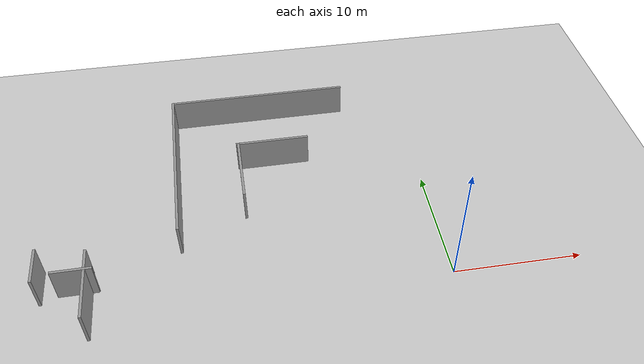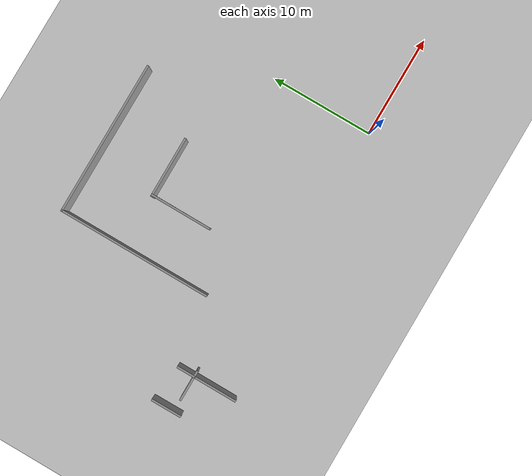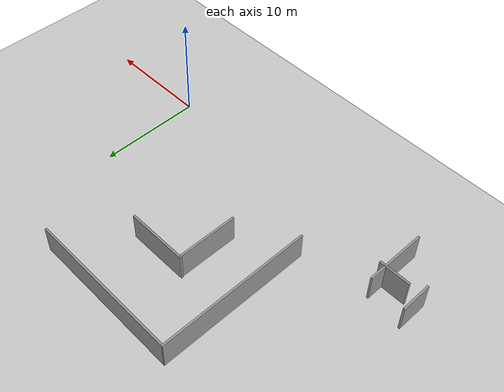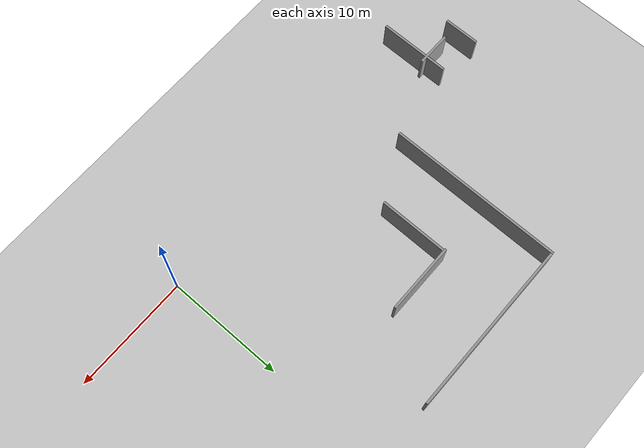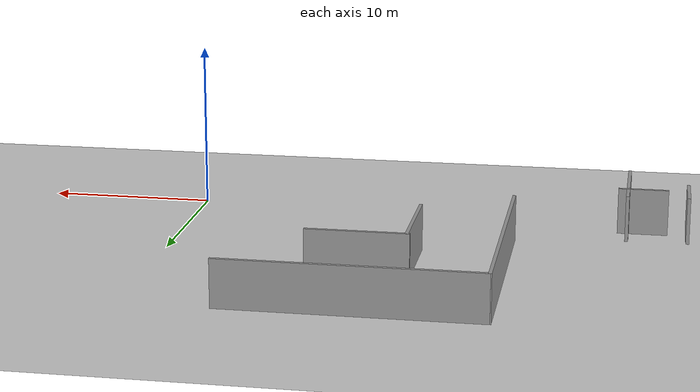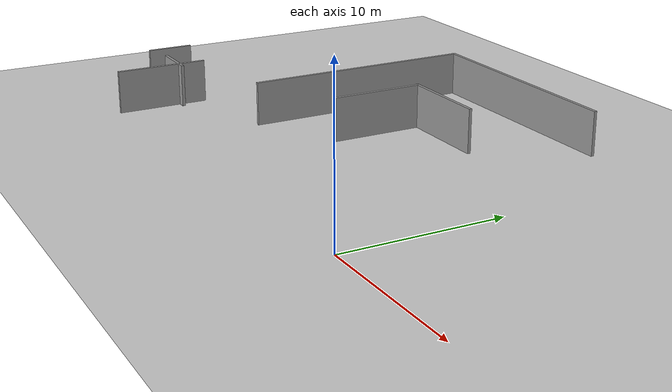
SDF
<sdf version="1.7">
 <world name="default">
  <model name="ground_plane">
   <static>1</static>
   <link name="link">
    <collision name="collision">
     <geometry><plane><normal>0 0 1</normal><size>100 100</size></plane></geometry>
     <surface>
      <contact><collide_bitmask>65535</collide_bitmask></contact>
      <friction><ode><mu>100</mu><mu2>50</mu2></ode></friction>
     </surface>
    </collision>
    <visual name="visual">
     <cast_shadows>0</cast_shadows>
     <geometry><plane><normal>0 0 1</normal><size>100 100</size></plane></geometry>
     <material>
      <script><uri>file://media/materials/scripts/gazebo.material</uri><name>Gazebo/Grey</name></script>
     </material>
    </visual>
   </link>
  </model>
  <model name="grey_wall_3_clone">
   <link name="link">
    <pose>0 0 1.4 0 -0 0</pose>
    <inertial>
     <mass>1</mass>
     <inertia><ixx>1</ixx><ixy>0</ixy><ixz>0</ixz><iyy>1</iyy><iyz>0</iyz><izz>1</izz></inertia>
    </inertial>
    <visual name="visual">
     <cast_shadows>0</cast_shadows>
     <geometry><box><size>3 0.2 2.8</size></box></geometry>
     <material>
      <script>
       <uri>model://grey_wall/materials/scripts</uri>
       <uri>model://grey_wall/materials/textures</uri>
       <name>vrc/grey_wall</name>
      </script>
      <shader type="pixel"><normal_map>__default__</normal_map></shader>
      <ambient>1 1 1 1</ambient>
      <diffuse>1 1 1 1</diffuse>
      <specular>0 0 0 1</specular>
      <emissive>0 0 0 1</emissive>
     </material>
    </visual>
    <collision name="collision">
     <geometry><box><size>2.96 0.2 2.8</size></box></geometry>
     <surface>
      <friction>
       <ode><mu>1</mu><mu2>1</mu2><fdir1>0 0 0</fdir1><slip1>0</slip1><slip2>0</slip2></ode>
       <torsional>
        <coefficient>1</coefficient>
        <patch_radius>0</patch_radius>
        <surface_radius>0</surface_radius>
        <use_patch_radius>1</use_patch_radius>
        <ode><slip>0</slip></ode>
       </torsional>
      </friction>
      <bounce><restitution_coefficient>0</restitution_coefficient><threshold>1e+06</threshold></bounce>
      <contact>
       <collide_without_contact>0</collide_without_contact>
       <collide_without_contact_bitmask>1</collide_without_contact_bitmask>
       <collide_bitmask>1</collide_bitmask>
       <ode>
        <soft_cfm>0</soft_cfm>
        <soft_erp>0.2</soft_erp>
        <kp>1e+13</kp>
        <kd>1</kd>
        <max_vel>0.01</max_vel>
        <min_depth>0</min_depth>
       </ode>
       <bullet>
        <split_impulse>1</split_impulse>
        <split_impulse_penetration_threshold>-0.01</split_impulse_penetration_threshold>
        <soft_cfm>0</soft_cfm>
        <soft_erp>0.2</soft_erp>
        <kp>1e+13</kp>
        <kd>1</kd>
       </bullet>
      </contact>
     </surface>
    </collision>
   </link>
   <static>1</static>
   <pose>-27.6676 2.53562 0 0 -0 0</pose>
  </model>
  <model name="grey_wall_6_clone">
   <link name="link">
    <pose>0 0 1.4 0 -0 0</pose>
    <inertial>
     <mass>1</mass>
     <inertia><ixx>1</ixx><ixy>0</ixy><ixz>0</ixz><iyy>1</iyy><iyz>0</iyz><izz>1</izz></inertia>
    </inertial>
    <visual name="visual">
     <cast_shadows>0</cast_shadows>
     <geometry><box><size>6 0.2 2.8</size></box></geometry>
     <material>
      <script>
       <uri>model://grey_wall/materials/scripts</uri>
       <uri>model://grey_wall/materials/textures</uri>
       <name>vrc/grey_wall</name>
      </script>
      <shader type="pixel"><normal_map>__default__</normal_map></shader>
      <ambient>1 1 1 1</ambient>
      <diffuse>1 1 1 1</diffuse>
      <specular>0 0 0 1</specular>
      <emissive>0 0 0 1</emissive>
     </material>
    </visual>
    <collision name="collision">
     <geometry><box><size>6 0.2 2.8</size></box></geometry>
     <surface>
      <friction>
       <ode><mu>1</mu><mu2>1</mu2><fdir1>0 0 0</fdir1><slip1>0</slip1><slip2>0</slip2></ode>
       <torsional>
        <coefficient>1</coefficient>
        <patch_radius>0</patch_radius>
        <surface_radius>0</surface_radius>
        <use_patch_radius>1</use_patch_radius>
        <ode><slip>0</slip></ode>
       </torsional>
      </friction>
      <bounce><restitution_coefficient>0</restitution_coefficient><threshold>1e+06</threshold></bounce>
      <contact>
       <collide_without_contact>0</collide_without_contact>
       <collide_without_contact_bitmask>1</collide_without_contact_bitmask>
       <collide_bitmask>1</collide_bitmask>
       <ode>
        <soft_cfm>0</soft_cfm>
        <soft_erp>0.2</soft_erp>
        <kp>1e+13</kp>
        <kd>1</kd>
        <max_vel>0.01</max_vel>
        <min_depth>0</min_depth>
       </ode>
       <bullet>
        <split_impulse>1</split_impulse>
        <split_impulse_penetration_threshold>-0.01</split_impulse_penetration_threshold>
        <soft_cfm>0</soft_cfm>
        <soft_erp>0.2</soft_erp>
        <kp>1e+13</kp>
        <kd>1</kd>
       </bullet>
      </contact>
     </surface>
    </collision>
   </link>
   <static>1</static>
   <pose>-26.7573 1.28858 0 0 -0 1.57141</pose>
  </model>
  <model name="grey_wall_2_clone">
   <link name="link">
    <pose>0 0 1.4 0 -0 0</pose>
    <inertial>
     <mass>1</mass>
     <inertia><ixx>1</ixx><ixy>0</ixy><ixz>0</ixz><iyy>1</iyy><iyz>0</iyz><izz>1</izz></inertia>
    </inertial>
    <visual name="visual">
     <cast_shadows>0</cast_shadows>
     <geometry><box><size>3 0.2 2.8</size></box></geometry>
     <material>
      <script>
       <uri>model://grey_wall/materials/scripts</uri>
       <uri>model://grey_wall/materials/textures</uri>
       <name>vrc/grey_wall</name>
      </script>
      <shader type="pixel"><normal_map>__default__</normal_map></shader>
      <ambient>1 1 1 1</ambient>
      <diffuse>1 1 1 1</diffuse>
      <specular>0 0 0 1</specular>
      <emissive>0 0 0 1</emissive>
     </material>
    </visual>
    <collision name="collision">
     <geometry><box><size>3 0.2 2.8</size></box></geometry>
     <surface>
      <friction>
       <ode><mu>1</mu><mu2>1</mu2><fdir1>0 0 0</fdir1><slip1>0</slip1><slip2>0</slip2></ode>
       <torsional>
        <coefficient>1</coefficient>
        <patch_radius>0</patch_radius>
        <surface_radius>0</surface_radius>
        <use_patch_radius>1</use_patch_radius>
        <ode><slip>0</slip></ode>
       </torsional>
      </friction>
      <bounce><restitution_coefficient>0</restitution_coefficient><threshold>1e+06</threshold></bounce>
      <contact>
       <collide_without_contact>0</collide_without_contact>
       <collide_without_contact_bitmask>1</collide_without_contact_bitmask>
       <collide_bitmask>1</collide_bitmask>
       <ode>
        <soft_cfm>0</soft_cfm>
        <soft_erp>0.2</soft_erp>
        <kp>1e+13</kp>
        <kd>1</kd>
        <max_vel>0.01</max_vel>
        <min_depth>0</min_depth>
       </ode>
       <bullet>
        <split_impulse>1</split_impulse>
        <split_impulse_penetration_threshold>-0.01</split_impulse_penetration_threshold>
        <soft_cfm>0</soft_cfm>
        <soft_erp>0.2</soft_erp>
        <kp>1e+13</kp>
        <kd>1</kd>
       </bullet>
      </contact>
     </surface>
    </collision>
   </link>
   <static>1</static>
   <pose>-30.3361 3.25719 0.16865 0 0 -1.56489</pose>
  </model>
  <model name="grey_wall_15_clone_0_clone_clone_0_clone_0">
   <link name="link">
    <pose>0 0 1.4 0 -0 0</pose>
    <inertial>
     <mass>1</mass>
     <inertia><ixx>1</ixx><ixy>0</ixy><ixz>0</ixz><iyy>1</iyy><iyz>0</iyz><izz>1</izz></inertia>
    </inertial>
    <visual name="visual">
     <cast_shadows>0</cast_shadows>
     <geometry><box><size>15 0.2 2.8</size></box></geometry>
     <material>
      <script>
       <uri>model://grey_wall/materials/scripts</uri>
       <uri>model://grey_wall/materials/textures</uri>
       <name>vrc/grey_wall</name>
      </script>
      <shader type="pixel"><normal_map>__default__</normal_map></shader>
      <ambient>1 1 1 1</ambient>
      <diffuse>1 1 1 1</diffuse>
      <specular>0 0 0 1</specular>
      <emissive>0 0 0 1</emissive>
     </material>
    </visual>
    <collision name="collision">
     <geometry><box><size>15 0.2 2.8</size></box></geometry>
     <surface>
      <friction>
       <ode><mu>1</mu><mu2>1</mu2><fdir1>0 0 0</fdir1><slip1>0</slip1><slip2>0</slip2></ode>
       <torsional>
        <coefficient>1</coefficient>
        <patch_radius>0</patch_radius>
        <surface_radius>0</surface_radius>
        <use_patch_radius>1</use_patch_radius>
        <ode><slip>0</slip></ode>
       </torsional>
      </friction>
      <bounce><restitution_coefficient>0</restitution_coefficient><threshold>1e+06</threshold></bounce>
      <contact>
       <collide_without_contact>0</collide_without_contact>
       <collide_without_contact_bitmask>1</collide_without_contact_bitmask>
       <collide_bitmask>1</collide_bitmask>
       <ode>
        <soft_cfm>0</soft_cfm>
        <soft_erp>0.2</soft_erp>
        <kp>1e+13</kp>
        <kd>1</kd>
        <max_vel>0.01</max_vel>
        <min_depth>0</min_depth>
       </ode>
       <bullet>
        <split_impulse>1</split_impulse>
        <split_impulse_penetration_threshold>-0.01</split_impulse_penetration_threshold>
        <soft_cfm>0</soft_cfm>
        <soft_erp>0.2</soft_erp>
        <kp>1e+13</kp>
        <kd>1</kd>
       </bullet>
      </contact>
     </surface>
    </collision>
   </link>
   <static>1</static>
   <pose>-20.1116 12.6835 0 0 -0 1.57141</pose>
  </model>
  <model name="grey_wall_15_clone_0_clone_clone_clone_1">
   <link name="link">
    <pose>0 0 1.4 0 -0 0</pose>
    <inertial>
     <mass>1</mass>
     <inertia><ixx>1</ixx><ixy>0</ixy><ixz>0</ixz><iyy>1</iyy><iyz>0</iyz><izz>1</izz></inertia>
    </inertial>
    <visual name="visual">
     <cast_shadows>0</cast_shadows>
     <geometry><box><size>15 0.2 2.8</size></box></geometry>
     <material>
      <script>
       <uri>model://grey_wall/materials/scripts</uri>
       <uri>model://grey_wall/materials/textures</uri>
       <name>vrc/grey_wall</name>
      </script>
      <shader type="pixel"><normal_map>__default__</normal_map></shader>
      <ambient>1 1 1 1</ambient>
      <diffuse>1 1 1 1</diffuse>
      <specular>0 0 0 1</specular>
      <emissive>0 0 0 1</emissive>
     </material>
    </visual>
    <collision name="collision">
     <geometry><box><size>15 0.2 2.8</size></box></geometry>
     <surface>
      <friction>
       <ode><mu>1</mu><mu2>1</mu2><fdir1>0 0 0</fdir1><slip1>0</slip1><slip2>0</slip2></ode>
       <torsional>
        <coefficient>1</coefficient>
        <patch_radius>0</patch_radius>
        <surface_radius>0</surface_radius>
        <use_patch_radius>1</use_patch_radius>
        <ode><slip>0</slip></ode>
       </torsional>
      </friction>
      <bounce><restitution_coefficient>0</restitution_coefficient><threshold>1e+06</threshold></bounce>
      <contact>
       <collide_without_contact>0</collide_without_contact>
       <collide_without_contact_bitmask>1</collide_without_contact_bitmask>
       <collide_bitmask>1</collide_bitmask>
       <ode>
        <soft_cfm>0</soft_cfm>
        <soft_erp>0.2</soft_erp>
        <kp>1e+13</kp>
        <kd>1</kd>
        <max_vel>0.01</max_vel>
        <min_depth>0</min_depth>
       </ode>
       <bullet>
        <split_impulse>1</split_impulse>
        <split_impulse_penetration_threshold>-0.01</split_impulse_penetration_threshold>
        <soft_cfm>0</soft_cfm>
        <soft_erp>0.2</soft_erp>
        <kp>1e+13</kp>
        <kd>1</kd>
       </bullet>
      </contact>
     </surface>
    </collision>
   </link>
   <static>1</static>
   <pose>-12.651 20.1007 0 0 -0 0.001488</pose>
  </model>
  <model name="grey_wall_6_clone_0">
   <link name="link">
    <pose>0 0 1.4 0 -0 0</pose>
    <inertial>
     <mass>1</mass>
     <inertia><ixx>1</ixx><ixy>0</ixy><ixz>0</ixz><iyy>1</iyy><iyz>0</iyz><izz>1</izz></inertia>
    </inertial>
    <visual name="visual">
     <cast_shadows>0</cast_shadows>
     <geometry><box><size>6 0.2 2.8</size></box></geometry>
     <material>
      <script>
       <uri>model://grey_wall/materials/scripts</uri>
       <uri>model://grey_wall/materials/textures</uri>
       <name>vrc/grey_wall</name>
      </script>
      <shader type="pixel"><normal_map>__default__</normal_map></shader>
      <ambient>1 1 1 1</ambient>
      <diffuse>1 1 1 1</diffuse>
      <specular>0 0 0 1</specular>
      <emissive>0 0 0 1</emissive>
     </material>
    </visual>
    <collision name="collision">
     <geometry><box><size>6 0.2 2.8</size></box></geometry>
     <surface>
      <friction>
       <ode><mu>1</mu><mu2>1</mu2><fdir1>0 0 0</fdir1><slip1>0</slip1><slip2>0</slip2></ode>
       <torsional>
        <coefficient>1</coefficient>
        <patch_radius>0</patch_radius>
        <surface_radius>0</surface_radius>
        <use_patch_radius>1</use_patch_radius>
        <ode><slip>0</slip></ode>
       </torsional>
      </friction>
      <bounce><restitution_coefficient>0</restitution_coefficient><threshold>1e+06</threshold></bounce>
      <contact>
       <collide_without_contact>0</collide_without_contact>
       <collide_without_contact_bitmask>1</collide_without_contact_bitmask>
       <collide_bitmask>1</collide_bitmask>
       <ode>
        <soft_cfm>0</soft_cfm>
        <soft_erp>0.2</soft_erp>
        <kp>1e+13</kp>
        <kd>1</kd>
        <max_vel>0.01</max_vel>
        <min_depth>0</min_depth>
       </ode>
       <bullet>
        <split_impulse>1</split_impulse>
        <split_impulse_penetration_threshold>-0.01</split_impulse_penetration_threshold>
        <soft_cfm>0</soft_cfm>
        <soft_erp>0.2</soft_erp>
        <kp>1e+13</kp>
        <kd>1</kd>
       </bullet>
      </contact>
     </surface>
    </collision>
   </link>
   <static>1</static>
   <pose>-12.0539 13.9243 0 0 -0 -3.13795</pose>
  </model>
  <model name="grey_wall_6_clone_0_clone_clone_clone">
   <link name="link">
    <pose>0 0 1.4 0 -0 0</pose>
    <inertial>
     <mass>1</mass>
     <inertia><ixx>1</ixx><ixy>0</ixy><ixz>0</ixz><iyy>1</iyy><iyz>0</iyz><izz>1</izz></inertia>
    </inertial>
    <visual name="visual">
     <cast_shadows>0</cast_shadows>
     <geometry><box><size>6 0.2 2.8</size></box></geometry>
     <material>
      <script>
       <uri>model://grey_wall/materials/scripts</uri>
       <uri>model://grey_wall/materials/textures</uri>
       <name>vrc/grey_wall</name>
      </script>
      <shader type="pixel"><normal_map>__default__</normal_map></shader>
      <ambient>1 1 1 1</ambient>
      <diffuse>1 1 1 1</diffuse>
      <specular>0 0 0 1</specular>
      <emissive>0 0 0 1</emissive>
     </material>
    </visual>
    <collision name="collision">
     <geometry><box><size>6 0.2 2.8</size></box></geometry>
     <surface>
      <friction>
       <ode><mu>1</mu><mu2>1</mu2><fdir1>0 0 0</fdir1><slip1>0</slip1><slip2>0</slip2></ode>
       <torsional>
        <coefficient>1</coefficient>
        <patch_radius>0</patch_radius>
        <surface_radius>0</surface_radius>
        <use_patch_radius>1</use_patch_radius>
        <ode><slip>0</slip></ode>
       </torsional>
      </friction>
      <bounce><restitution_coefficient>0</restitution_coefficient><threshold>1e+06</threshold></bounce>
      <contact>
       <collide_without_contact>0</collide_without_contact>
       <collide_without_contact_bitmask>1</collide_without_contact_bitmask>
       <collide_bitmask>1</collide_bitmask>
       <ode>
        <soft_cfm>0</soft_cfm>
        <soft_erp>0.2</soft_erp>
        <kp>1e+13</kp>
        <kd>1</kd>
        <max_vel>0.01</max_vel>
        <min_depth>0</min_depth>
       </ode>
       <bullet>
        <split_impulse>1</split_impulse>
        <split_impulse_penetration_threshold>-0.01</split_impulse_penetration_threshold>
        <soft_cfm>0</soft_cfm>
        <soft_erp>0.2</soft_erp>
        <kp>1e+13</kp>
        <kd>1</kd>
       </bullet>
      </contact>
     </surface>
    </collision>
   </link>
   <static>1</static>
   <pose>-14.8767 11.0071 0 0 -0 1.56941</pose>
  </model>
 </world>
</sdf>
